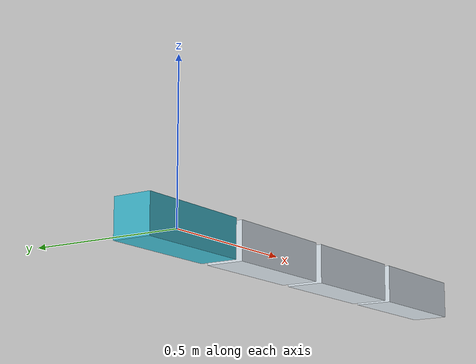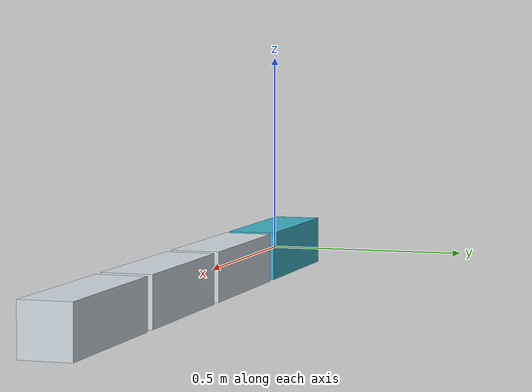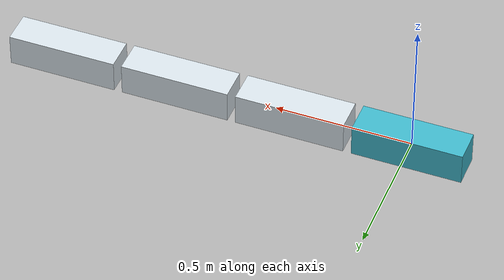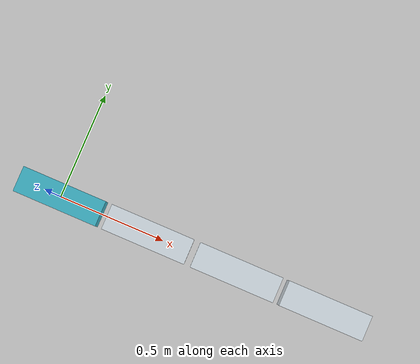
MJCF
<mujoco model="cadena4">
  <compiler angle="degree" autolimits="true"/>
  <option timestep="0.002083" gravity="0 0 0" integrator="implicitfast"
          density="0.0" viscosity="0.0"/>
  <default>
    <geom type="box" size="0.2 0.06 0.06" density="300.0" rgba="0.85 0.89 0.92 1"/>
    <joint type="hinge" range="-60.0 60.0" damping="0.3"/>
    <motor ctrlrange="-1 1" gear="14.4000"/>
  </default>
  <worldbody>
    <body name="pieza0" pos="0 0 0">
      <freejoint name="raiz"/>
      <geom name="g_pieza0" rgba="0.25 0.72 0.8 1"/>
      <body name="pieza1" pos="0.4300 0 0">
        <joint name="bisagra1" axis="0 0 1" pos="-0.2150 0 0"/>
        <geom name="g_pieza1"/>
        <body name="pieza2" pos="0.4300 0 0">
          <joint name="bisagra2" axis="0 0 1" pos="-0.2150 0 0"/>
          <geom name="g_pieza2"/>
          <body name="pieza3" pos="0.4300 0 0">
            <joint name="bisagra3" axis="0 0 1" pos="-0.2150 0 0"/>
            <geom name="g_pieza3"/>
          </body>
        </body>
      </body>
    </body>
  </worldbody>
  <actuator>
    <motor name="m1" joint="bisagra1"/>
    <motor name="m2" joint="bisagra2"/>
    <motor name="m3" joint="bisagra3"/>
  </actuator>
</mujoco>
